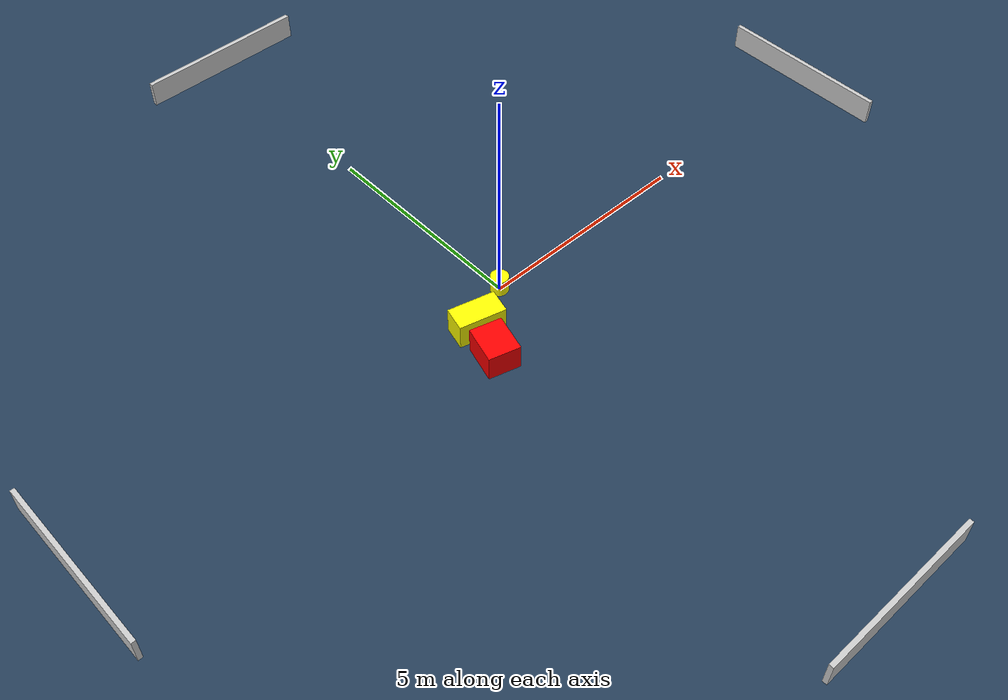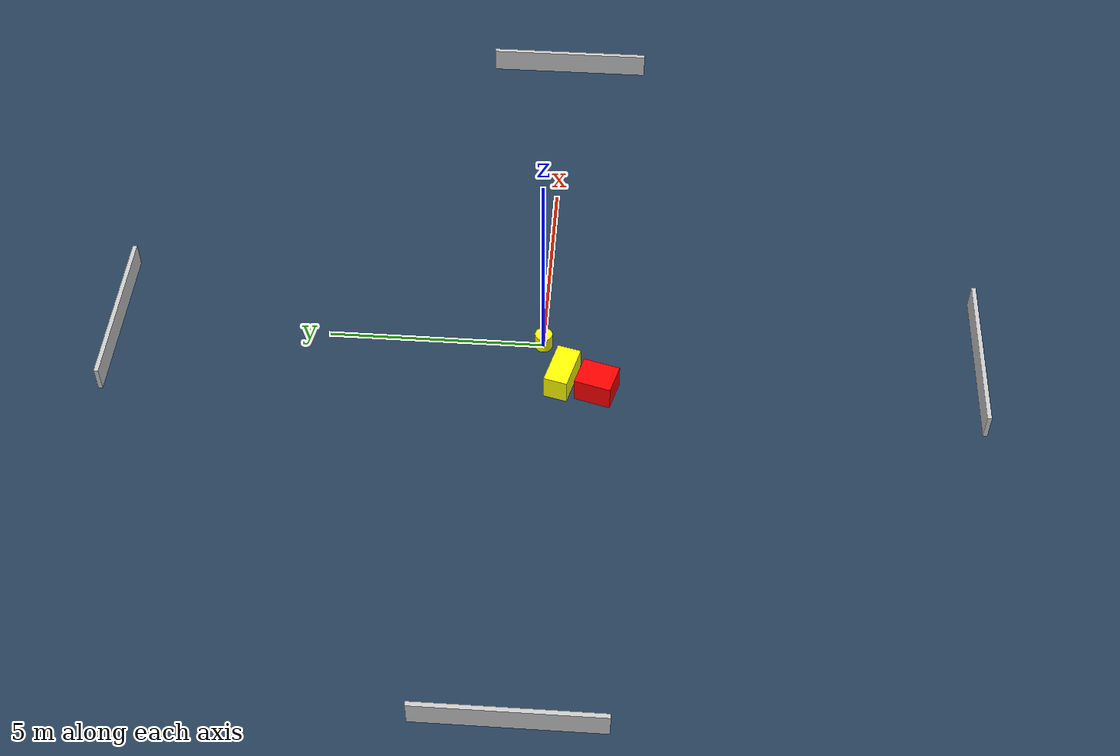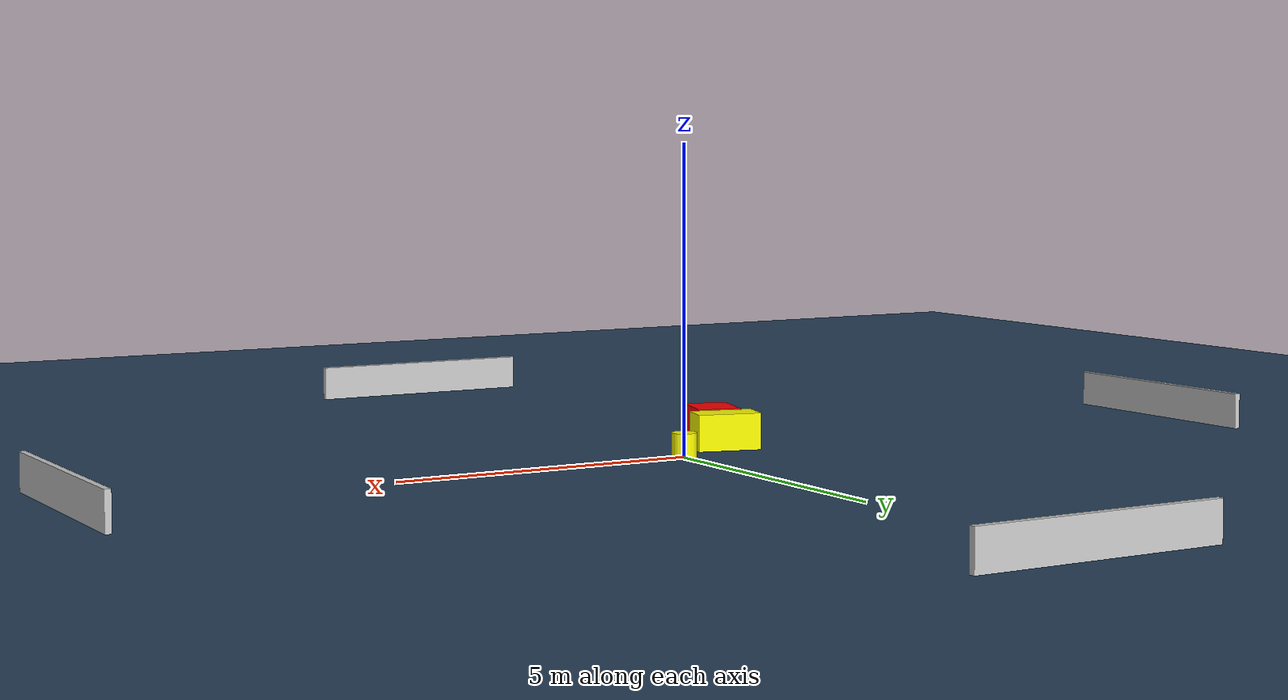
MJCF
<?xml version="1.0" ?>
<mujoco model="generated_environment">
  <option timestep="0.01" integrator="RK4" cone="elliptic"/>
  <default>
    <geom density="1"/>
  </default>
  <asset>
    <texture builtin="gradient" height="3072" name="skybox" rgb1="0.3 0.5 0.7" rgb2="0 0 0" type="skybox" width="512"/>
    <texture builtin="checker" height="300" name="groundplane" rgb1="0.2 0.3 0.4" rgb2="0.1 0.2 0.3" type="2d" width="300"/>
    <material name="groundplane" reflectance="0.2" texrepeat="5 5" texture="groundplane"/>
  </asset>
  <worldbody>
    <light dir="0 0 -1" directional="true" pos="0 0 1.5"/>
    <geom condim="3" friction="0.5 0.005 0.001" material="groundplane" name="floor" pos="0 0 0" size="0 0 0.05" type="plane"/>
    <body name="walls">
      <geom name="wall_1" condim="4" pos="-10.0 0.0 0.3" rgba="0.800000011920929 0.800000011920929 0.800000011920929 1.0" size="0.05 2.0 0.3" type="box"/>
      <geom name="wall_2" condim="4" pos="10.0 0.0 0.3" rgba="0.800000011920929 0.800000011920929 0.800000011920929 1.0" size="0.05 2.0 0.3" type="box"/>
      <geom name="wall_3" condim="4" pos="0.0 -10.0 0.3" rgba="0.800000011920929 0.800000011920929 0.800000011920929 1.0" size="2.0 0.05 0.3" type="box"/>
      <geom name="wall_4" condim="4" pos="0.0 10.0 0.3" rgba="0.800000011920929 0.800000011920929 0.800000011920929 1.0" size="2.0 0.05 0.3" type="box"/>
    </body>
    <body name="robot">
      <joint name="joint_x" type="slide" pos="0 0 0" axis="1 0 0"/>
      <joint name="joint_y" type="slide" pos="0 0 0" axis="0 1 0"/>
      <geom name="robot" type="cylinder" pos="0.0 0.0 0.2" size="0.2 0.2 0.0" mass="5.0" friction="1.0 0.005 0.0001" condim="4" rgba="1.0 1.0 0.0 1.0"/>
    </body>
    <body name="obstacle_1_movable">
      <geom name="obstacle_1_movable" condim="4" pos="-1.0768718729789113 -0.4972924742802291 0.3" euler="0 0 345.68696689463815" friction="0.0 0.005 0.001" rgba="1.0 1.0 0.0 1.0" size="0.5264240550215854 0.2724693165781716 0.3" type="box" mass="0.1"/>
      <joint type="free"/>
    </body>
    <body name="obstacle_2_static">
      <geom name="obstacle_2_static" condim="4" pos="-1.3207393855467817 -1.2952300825925867 0.3" euler="0 0 254.56271595372428" friction="0.0 0.005 0.001" rgba="1.0 0.0 0.0 1.0" size="0.42352468335534293 0.35537603803276685 0.3" type="box"/>
    </body>
  </worldbody>
  <actuator>
    <motor name="actuator_x" joint="joint_x" gear="1" ctrlrange="-1 1"/>
    <motor name="actuator_y" joint="joint_y" gear="1" ctrlrange="-1 1"/>
  </actuator>
</mujoco>
